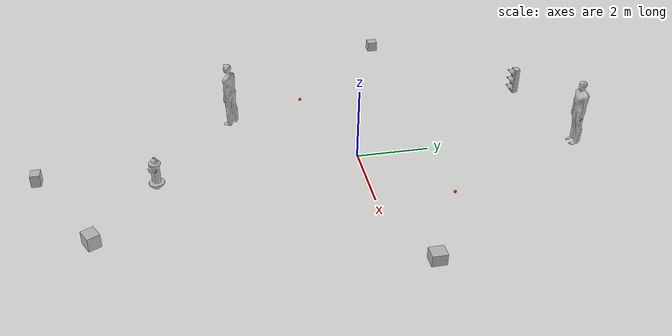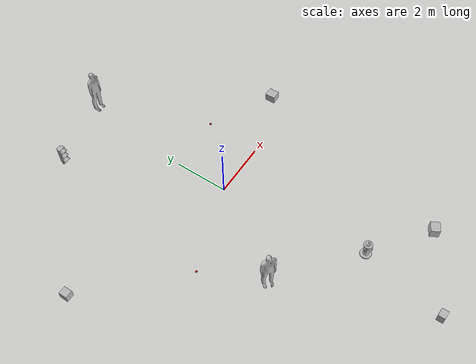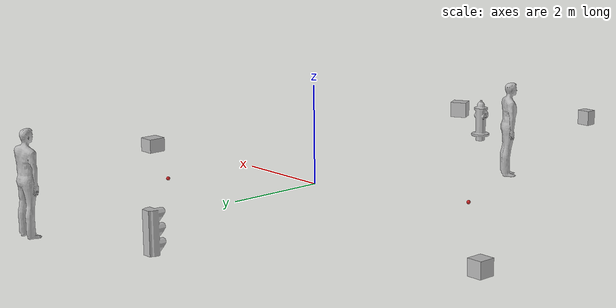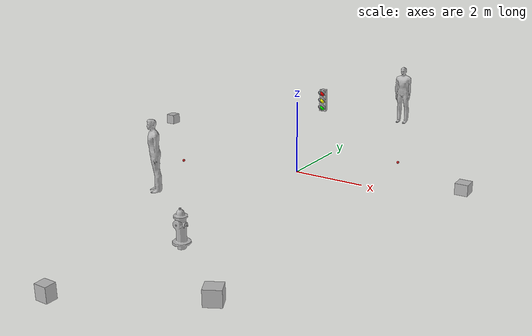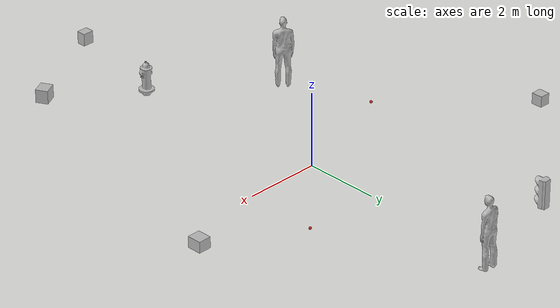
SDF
<sdf version="1.7">
 <world name="default">
  <gravity>0 0 -9.8</gravity>
  <physics name="default_physics" default="0" type="ode">
   <max_step_size>0.001</max_step_size>
   <real_time_factor>1</real_time_factor>
   <real_time_update_rate>1000</real_time_update_rate>
  </physics>
  <model name="DynamicObstacle1">
   <pose>-0.230618 -8.47682 0.205216 1.5708 0 1.57058</pose>
   <link name="link">
    <inertial>
     <inertia><ixx>0.17</ixx><ixy>0</ixy><ixz>0</ixz><iyy>0.17</iyy><iyz>0</iyz><izz>0.17</izz></inertia>
     <mass>100</mass>
    </inertial>
    <collision name="collision">
     <max_contacts>0</max_contacts>
     <geometry><box><size>0.250582 0.341982 0.3</size></box></geometry>
     <surface>
      <friction><ode><mu>0</mu><mu2>0</mu2></ode></friction>
      <bounce><restitution_coefficient>0</restitution_coefficient><threshold>0</threshold></bounce>
      <contact><ode><kp>2e+09</kp><kd>1</kd><max_vel>0.01</max_vel><min_depth>0</min_depth></ode></contact>
     </surface>
    </collision>
    <visual name="visual"><geometry><box><size>0.250582 0.341982 0.3</size></box></geometry></visual>
   </link>
   <plugin name="random" filename="libRandomVelocityPlugin.so">
    <link>link</link>
    <initial_velocity>0.5 0.0 0</initial_velocity>
    <velocity_factor>0.2</velocity_factor>
    <update_period>5</update_period>
    <min_z>-5</min_z>
    <max_z>0</max_z>
   </plugin>
  </model>
  <model name="DynamicObstacle2">
   <pose>-6.16175 1.92181 0.184225 0 -0 2.3e-05</pose>
   <link name="link">
    <inertial>
     <inertia><ixx>0.17</ixx><ixy>0</ixy><ixz>0</ixz><iyy>0.17</iyy><iyz>0</iyz><izz>0.17</izz></inertia>
     <mass>100</mass>
    </inertial>
    <collision name="collision">
     <max_contacts>0</max_contacts>
     <geometry><box><size>0.285196 0.305498 0.3</size></box></geometry>
     <surface>
      <friction><ode><mu>0</mu><mu2>0</mu2></ode></friction>
      <bounce><restitution_coefficient>0</restitution_coefficient><threshold>0</threshold></bounce>
      <contact><ode><kp>2e+09</kp><kd>1</kd><max_vel>0.01</max_vel><min_depth>0</min_depth></ode></contact>
     </surface>
    </collision>
    <visual name="visual"><geometry><box><size>0.285196 0.305498 0.3</size></box></geometry></visual>
   </link>
   <plugin name="random" filename="libRandomVelocityPlugin.so">
    <link>link</link>
    <initial_velocity>0.5 0.0 0</initial_velocity>
    <velocity_factor>0.2</velocity_factor>
    <update_period>5</update_period>
    <min_z>-5</min_z>
    <max_z>0</max_z>
   </plugin>
  </model>
  <model name="DynamicObstacle3">
   <pose>4.48697 0.811756 0.184225 -0 -0 -3.13219</pose>
   <link name="link">
    <inertial>
     <inertia><ixx>0.17</ixx><ixy>0</ixy><ixz>0</ixz><iyy>0.17</iyy><iyz>0</iyz><izz>0.17</izz></inertia>
     <mass>100</mass>
    </inertial>
    <collision name="collision">
     <max_contacts>0</max_contacts>
     <geometry><box><size>0.343098 0.379472 0.3</size></box></geometry>
     <surface>
      <friction><ode><mu>0</mu><mu2>0</mu2></ode></friction>
      <bounce><restitution_coefficient>0</restitution_coefficient><threshold>0</threshold></bounce>
      <contact><ode><kp>2e+09</kp><kd>1</kd><max_vel>0.01</max_vel><min_depth>0</min_depth></ode></contact>
     </surface>
    </collision>
    <visual name="visual"><geometry><box><size>0.343098 0.379472 0.3</size></box></geometry></visual>
   </link>
   <plugin name="random" filename="libRandomVelocityPlugin.so">
    <link>link</link>
    <initial_velocity>0.5 0.0 0</initial_velocity>
    <velocity_factor>0.2</velocity_factor>
    <update_period>5</update_period>
    <min_z>-5</min_z>
    <max_z>0</max_z>
   </plugin>
  </model>
  <light name="Warehouse_CeilingLight_003" type="point">
   <pose>0 0 9 0 -0 0</pose>
   <diffuse>0.5 0.5 0.5 1</diffuse>
   <specular>0.2 0.2 0.2 1</specular>
   <attenuation>
    <range>80</range>
    <constant>0.3</constant>
    <linear>0.01</linear>
    <quadratic>0.001</quadratic>
   </attenuation>
   <direction>0.1 0.1 -1</direction>
   <spot><inner_angle>0</inner_angle><outer_angle>0</outer_angle><falloff>0</falloff></spot>
  </light>
  <magnetic_field>6e-06 2.3e-05 -4.2e-05</magnetic_field>
  <atmosphere type="adiabatic"/>
  <scene><ambient>0.4 0.4 0.4 1</ambient><background>0.7 0.7 0.7 1</background><shadows>1</shadows></scene>
  <audio><device>default</device></audio>
  <spherical_coordinates>
   <surface_model>EARTH_WGS84</surface_model>
   <latitude_deg>0</latitude_deg>
   <longitude_deg>0</longitude_deg>
   <elevation>0</elevation>
   <heading_deg>0</heading_deg>
  </spherical_coordinates>
  <model name="person_standing">
   <link name="link">
    <inertial>
     <pose>0 -0.1 0.95 0 -0 0</pose>
     <mass>80</mass>
     <inertia><ixx>24.88</ixx><ixy>0</ixy><ixz>0</ixz><iyy>25.73</iyy><iyz>0</iyz><izz>2.48</izz></inertia>
    </inertial>
    <collision name="bottom">
     <pose>0 -0.1 0.01 0 -0 0</pose>
     <geometry><box><size>0.5 0.35 0.02</size></box></geometry>
    </collision>
    <collision name="person">
     <pose>0 0 0.02 0.04 -0 0</pose>
     <geometry><mesh><uri>model://person_standing/meshes/standing.dae</uri></mesh></geometry>
    </collision>
    <visual name="visual">
     <pose>0 0 0.02 0.04 -0 0</pose>
     <geometry><mesh><uri>model://person_standing/meshes/standing.dae</uri></mesh></geometry>
    </visual>
   </link>
   <pose>-2.19741 -3.18262 0.034225 4e-06 0 -0.697485</pose>
  </model>
  <model name="fire_hydrant">
   <static>1</static>
   <link name="link">
    <collision name="collision">
     <geometry><mesh><uri>model://fire_hydrant/meshes/fire_hydrant.dae</uri></mesh></geometry>
    </collision>
    <visual name="visual">
     <geometry><mesh><uri>model://fire_hydrant/meshes/fire_hydrant.dae</uri></mesh></geometry>
    </visual>
   </link>
   <pose>0.430755 -5.41226 0 0 -0 0</pose>
  </model>
  <model name="cricket_ball">
   <link name="link">
    <pose>0 0 0.0375 0 -0 0</pose>
    <inertial>
     <mass>0.1467</mass>
     <inertia>
      <ixx>8.25187e-05</ixx>
      <ixy>0</ixy>
      <ixz>0</ixz>
      <iyy>8.25187e-05</iyy>
      <iyz>0</iyz>
      <izz>8.25187e-05</izz>
     </inertia>
    </inertial>
    <collision name="collision">
     <geometry><sphere><radius>0.0375</radius></sphere></geometry>
     <surface>
      <contact>
       <poissons_ratio>0.347</poissons_ratio>
       <elastic_modulus>8.8e+09</elastic_modulus>
       <ode><kp>100000</kp><kd>100</kd><max_vel>100</max_vel><min_depth>0.001</min_depth></ode>
      </contact>
      <friction>
       <torsional>
        <coefficient>1</coefficient>
        <use_patch_radius>0</use_patch_radius>
        <surface_radius>0.01</surface_radius>
       </torsional>
      </friction>
     </surface>
    </collision>
    <visual name="visual">
     <geometry><sphere><radius>0.0375</radius></sphere></geometry>
     <material>
      <script><uri>file://media/materials/scripts/gazebo.material</uri><name>Gazebo/Red</name></script>
     </material>
    </visual>
    <velocity_decay><linear>0</linear><angular>0.005</angular></velocity_decay>
   </link>
   <pose>-3.15866 -1.08663 0.094968 -2.49702 -0.627932 1.50612</pose>
  </model>
  <model name="cricket_ball_0">
   <link name="link">
    <pose>0 0 0.0375 0 -0 0</pose>
    <inertial>
     <mass>0.1467</mass>
     <inertia>
      <ixx>8.25187e-05</ixx>
      <ixy>0</ixy>
      <ixz>0</ixz>
      <iyy>8.25187e-05</iyy>
      <iyz>0</iyz>
      <izz>8.25187e-05</izz>
     </inertia>
    </inertial>
    <collision name="collision">
     <geometry><sphere><radius>0.0375</radius></sphere></geometry>
     <surface>
      <contact>
       <poissons_ratio>0.347</poissons_ratio>
       <elastic_modulus>8.8e+09</elastic_modulus>
       <ode><kp>100000</kp><kd>100</kd><max_vel>100</max_vel><min_depth>0.001</min_depth></ode>
      </contact>
      <friction>
       <torsional>
        <coefficient>1</coefficient>
        <use_patch_radius>0</use_patch_radius>
        <surface_radius>0.01</surface_radius>
       </torsional>
      </friction>
     </surface>
    </collision>
    <visual name="visual">
     <geometry><sphere><radius>0.0375</radius></sphere></geometry>
     <material>
      <script><uri>file://media/materials/scripts/gazebo.material</uri><name>Gazebo/Red</name></script>
     </material>
    </visual>
    <velocity_decay><linear>0</linear><angular>0.005</angular></velocity_decay>
   </link>
   <pose>2.14282 2.07889 0.097971 2.85334 -0.710205 -1.9816</pose>
  </model>
  <model name="person_standing_0">
   <link name="link">
    <inertial>
     <pose>0 -0.1 0.95 0 -0 0</pose>
     <mass>80</mass>
     <inertia><ixx>24.88</ixx><ixy>0</ixy><ixz>0</ixz><iyy>25.73</iyy><iyz>0</iyz><izz>2.48</izz></inertia>
    </inertial>
    <collision name="bottom">
     <pose>0 -0.1 0.01 0 -0 0</pose>
     <geometry><box><size>0.5 0.35 0.02</size></box></geometry>
    </collision>
    <collision name="person">
     <pose>0 0 0.02 0.04 -0 0</pose>
     <geometry><mesh><uri>model://person_standing/meshes/standing.dae</uri></mesh></geometry>
    </collision>
    <visual name="visual">
     <pose>0 0 0.02 0.04 -0 0</pose>
     <geometry><mesh><uri>model://person_standing/meshes/standing.dae</uri></mesh></geometry>
    </visual>
   </link>
   <pose>0.459531 6.17504 0.034215 0 -0 0.000693</pose>
  </model>
  <model name="stop_light">
   <static>1</static>
   <pose>-2.24245 5.47558 1 0 -0 0</pose>
   <link name="link">
    <collision name="collision">
     <geometry>
      <mesh><uri>model://stop_light/meshes/stop_light.obj</uri><scale>0.01 0.01 0.01</scale></mesh>
     </geometry>
    </collision>
    <visual name="frame">
     <geometry>
      <mesh><uri>model://stop_light/meshes/stop_light.obj</uri><scale>0.01 0.01 0.01</scale></mesh>
     </geometry>
    </visual>
    <visual name="red">
     <pose>-0.001123 -0.082251 -0.147514 0 -0 0</pose>
     <geometry><sphere><radius>0.1012</radius></sphere></geometry>
     <material>
      <script>
       <uri>model://stop_light/materials/scripts/</uri>
       <uri>model://stop_light/materials/textures/</uri>
       <name>StopLight/Light</name>
      </script>
      <ambient>1 0 0 1</ambient>
      <specular>1 0 0 1</specular>
     </material>
    </visual>
    <visual name="yellow">
     <pose>-0.001123 -0.082251 -0.402 0 -0 0</pose>
     <geometry><sphere><radius>0.1012</radius></sphere></geometry>
     <material>
      <script>
       <uri>model://stop_light/materials/scripts/</uri>
       <uri>model://stop_light/materials/textures/</uri>
       <name>StopLight/Light</name>
      </script>
      <ambient>1 1 0 1</ambient>
      <specular>1 1 0 1</specular>
     </material>
    </visual>
    <visual name="green">
     <pose>-0.001123 -0.082251 -0.655 0 -0 0</pose>
     <geometry><sphere><radius>0.1012</radius></sphere></geometry>
     <material>
      <script>
       <uri>model://stop_light/materials/scripts/</uri>
       <uri>model://stop_light/materials/textures/</uri>
       <name>StopLight/Light</name>
      </script>
      <ambient>0 1 0 1</ambient>
      <specular>0 1 0 1</specular>
     </material>
    </visual>
   </link>
  </model>
  <model name="DynamicObstacle">
   <pose>2.4871 -6.94186 0.215884 0 -0 2.05606</pose>
   <link name="link">
    <inertial>
     <inertia><ixx>0.17</ixx><ixy>0</ixy><ixz>0</ixz><iyy>0.17</iyy><iyz>0</iyz><izz>0.17</izz></inertia>
     <mass>100</mass>
    </inertial>
    <collision name="collision">
     <max_contacts>0</max_contacts>
     <geometry><box><size>0.328284 0.381912 0.363321</size></box></geometry>
     <surface>
      <friction><ode><mu>0</mu><mu2>0</mu2></ode></friction>
      <bounce><restitution_coefficient>0</restitution_coefficient><threshold>0</threshold></bounce>
      <contact><ode><kp>2e+09</kp><kd>1</kd><max_vel>0.01</max_vel><min_depth>0</min_depth></ode></contact>
     </surface>
    </collision>
    <visual name="visual"><geometry><box><size>0.328284 0.381912 0.363321</size></box></geometry></visual>
   </link>
   <plugin name="random" filename="libRandomVelocityPlugin.so">
    <link>link</link>
    <initial_velocity>0 0.05 0</initial_velocity>
    <velocity_factor>0.2</velocity_factor>
    <update_period>5</update_period>
    <min_z>-5</min_z>
    <max_z>0</max_z>
   </plugin>
  </model>
 </world>
</sdf>
